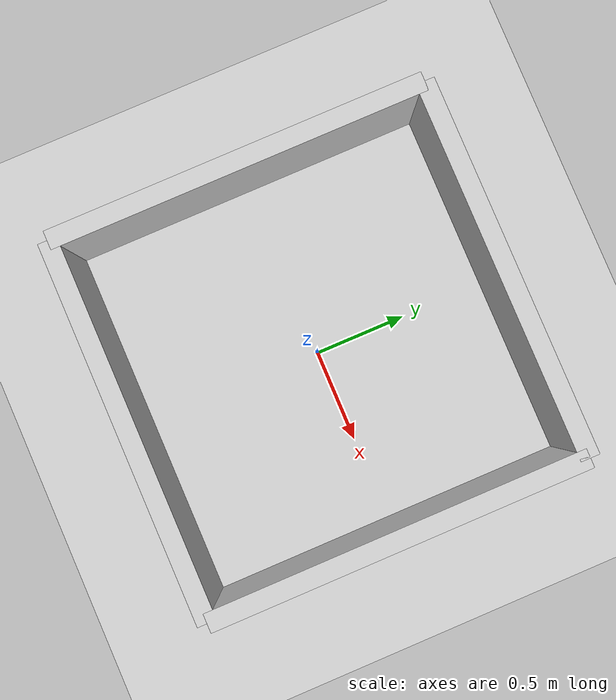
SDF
<?xml version="1.0"?>
<sdf version="1.7">
  <world name="maze_world">
    <physics name="physics" type="ode">
      <max_step_size>0.001</max_step_size>
      <real_time_factor>1.0</real_time_factor>
    </physics>

    <!-- Ground plane -->
    <model name="ground_plane">
      <static>true</static>
      <link name="link">
        <collision name="collision">
          <geometry>
            <plane>
              <normal>0 0 1</normal>
              <size>100 100</size>
            </plane>
          </geometry>
        </collision>
        <visual name="visual">
          <geometry>
            <plane>
              <normal>0 0 1</normal>
              <size>100 100</size>
            </plane>
          </geometry>
          <material>
            <ambient>0.8 0.8 0.8 1</ambient>
            <diffuse>0.8 0.8 0.8 1</diffuse>
          </material>
        </visual>
      </link>
    </model>

    <!-- Light source -->
    <light type="directional" name="sun">
      <cast_shadows>true</cast_shadows>
      <pose>0 0 10 0 0 0</pose>
      <diffuse>0.8 0.8 0.8 1</diffuse>
      <specular>0.2 0.2 0.2 1</specular>
      <direction>-0.5 0.1 -0.9</direction>
    </light>

    <!-- Maze walls - each wall is a separate model -->
    <model name="wall_1">
      <static>true</static>
      <pose>0 1 0.25 0 0 0</pose>
      <link name="link">
        <visual name="visual">
          <geometry>
            <box>
              <size>2 0.1 0.5</size>
            </box>
          </geometry>
          <material>
            <ambient>0.8 0.8 0.8 1</ambient>
            <diffuse>0.8 0.8 0.8 1</diffuse>
          </material>
        </visual>
        <collision name="collision">
          <geometry>
            <box>
              <size>2 0.1 0.5</size>
            </box>
          </geometry>
        </collision>
      </link>
    </model>

    <model name="wall_2">
      <static>true</static>
      <pose>0 -1 0.25 0 0 0</pose>
      <link name="link">
        <visual name="visual">
          <geometry>
            <box>
              <size>2 0.1 0.5</size>
            </box>
          </geometry>
          <material>
            <ambient>0.8 0.8 0.8 1</ambient>
            <diffuse>0.8 0.8 0.8 1</diffuse>
          </material>
        </visual>
        <collision name="collision">
          <geometry>
            <box>
              <size>2 0.1 0.5</size>
            </box>
          </geometry>
        </collision>
      </link>
    </model>

    <model name="wall_3">
      <static>true</static>
      <pose>1 0 0.25 0 0 0</pose>
      <link name="link">
        <visual name="visual">
          <geometry>
            <box>
              <size>0.1 2 0.5</size>
            </box>
          </geometry>
          <material>
            <ambient>0.8 0.8 0.8 1</ambient>
            <diffuse>0.8 0.8 0.8 1</diffuse>
          </material>
        </visual>
        <collision name="collision">
          <geometry>
            <box>
              <size>0.1 2 0.5</size>
            </box>
          </geometry>
        </collision>
      </link>
    </model>

    <model name="wall_4">
      <static>true</static>
      <pose>-1 0 0.25 0 0 0</pose>
      <link name="link">
        <visual name="visual">
          <geometry>
            <box>
              <size>0.1 2 0.5</size>
            </box>
          </geometry>
          <material>
            <ambient>0.8 0.8 0.8 1</ambient>
            <diffuse>0.8 0.8 0.8 1</diffuse>
          </material>
        </visual>
        <collision name="collision">
          <geometry>
            <box>
              <size>0.1 2 0.5</size>
            </box>
          </geometry>
        </collision>
      </link>
    </model>
  </world>
</sdf>
